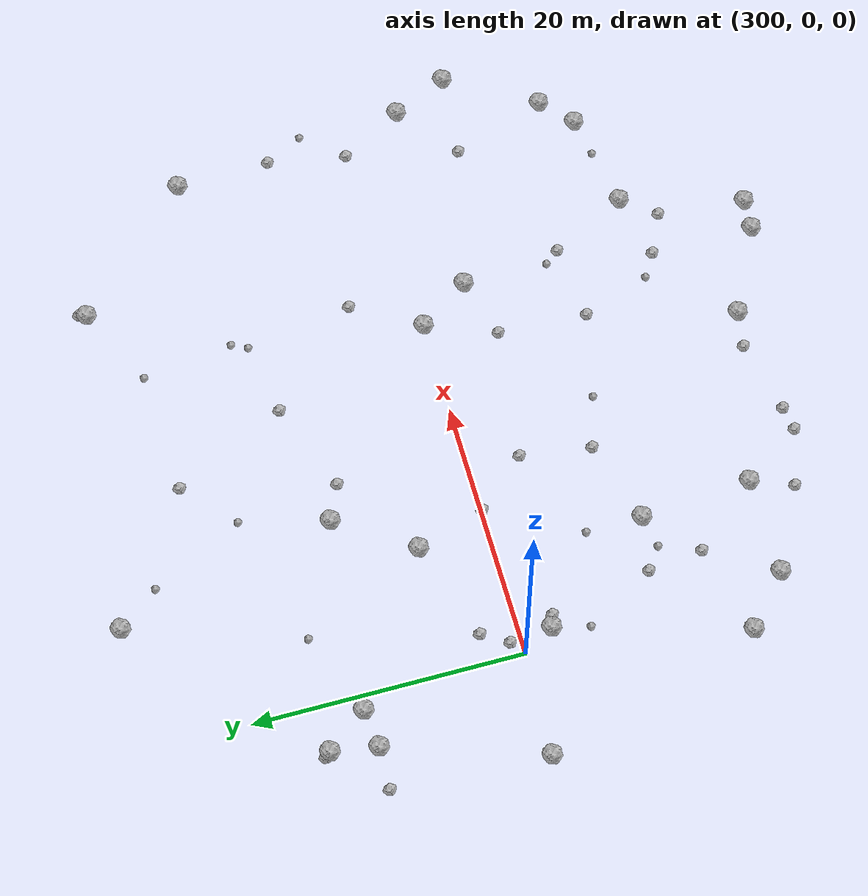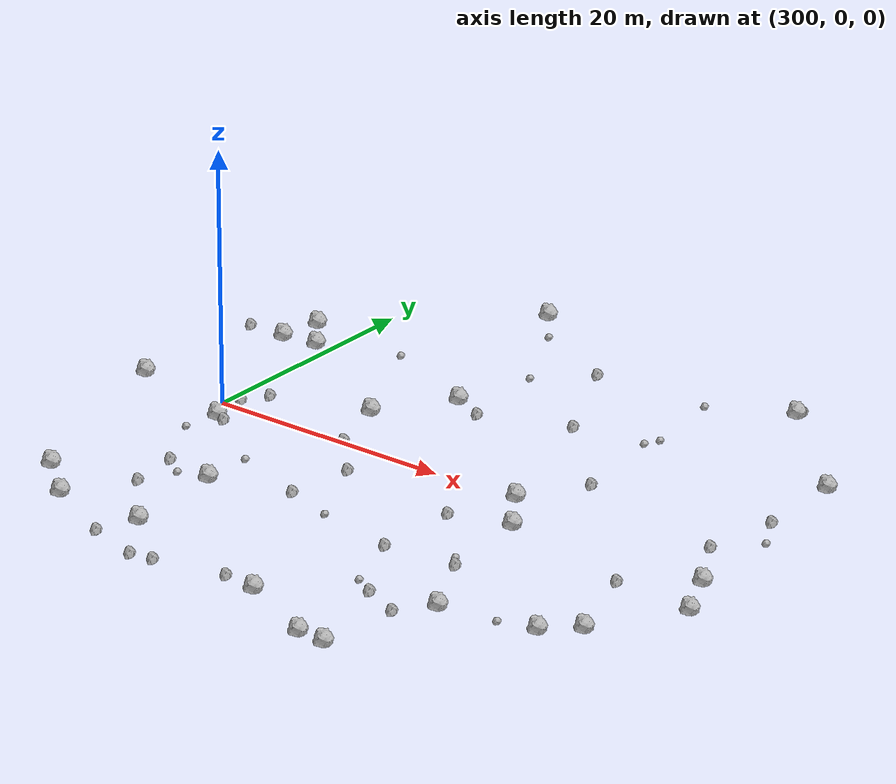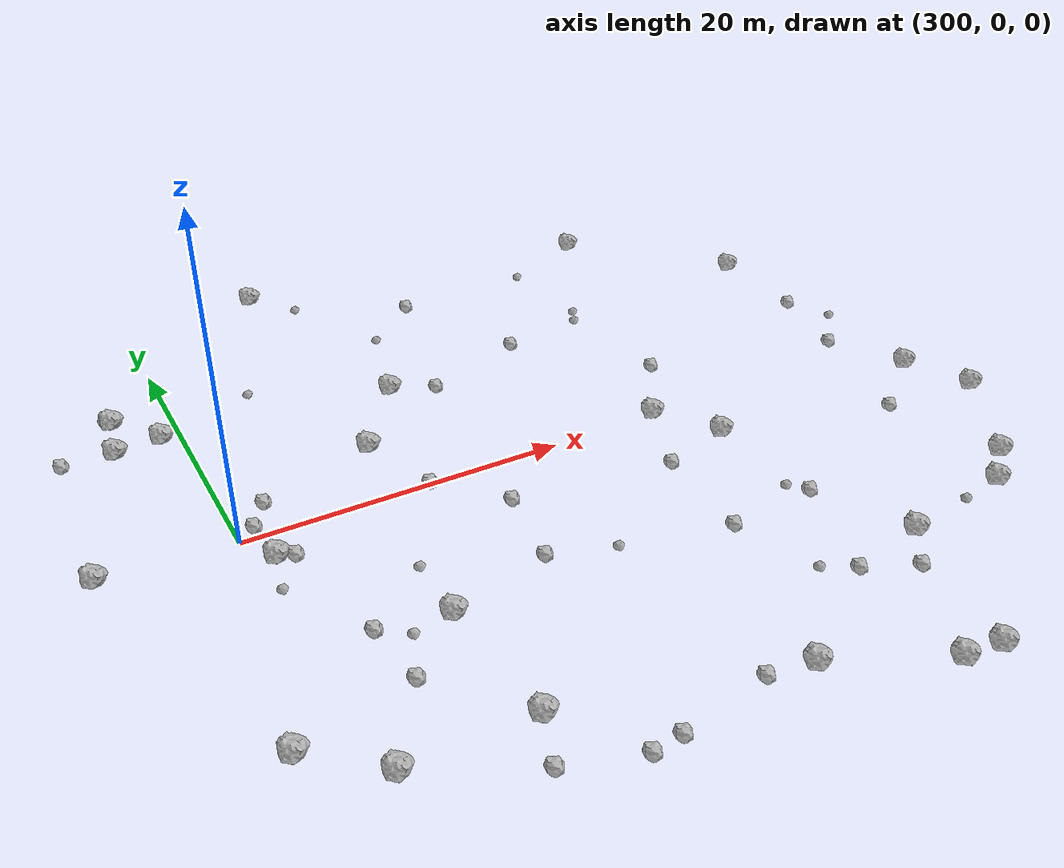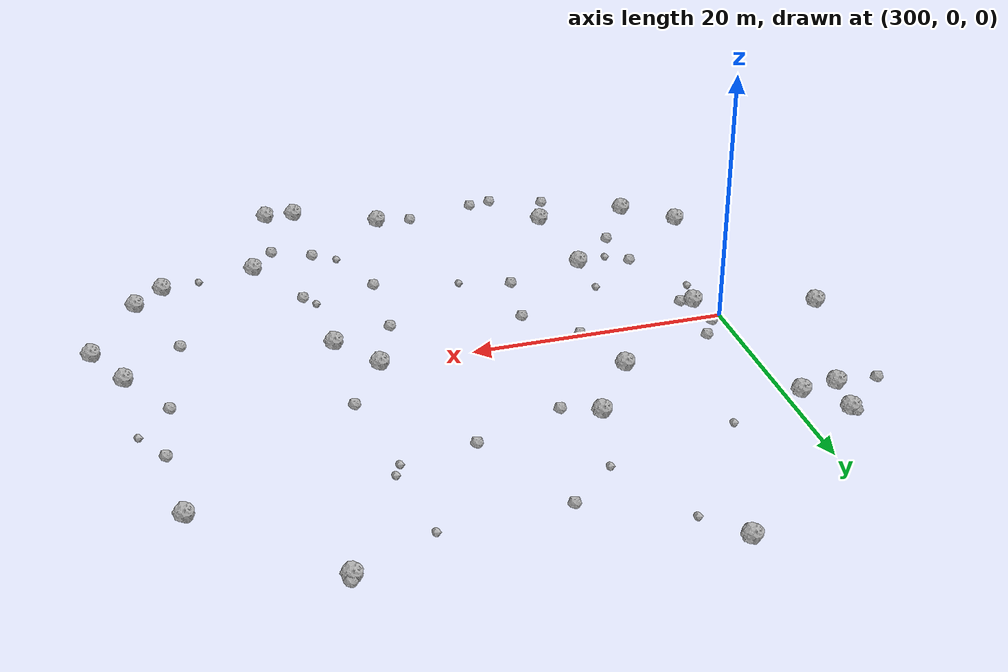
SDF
<sdf version="1.6">
 <world name="default">
  <include><uri>model://sun</uri></include>
  <model name="rock1_8_3">
   <include><uri>model://rock1</uri><pose>343.6923131098011 14.949614484842627 0.5 0 0 0</pose></include>
  </model>
  <model name="rock1_8_4">
   <include><uri>model://rock1</uri><pose>327.17525195757065 0.055480049445503 0.5 0 0 0</pose></include>
  </model>
  <model name="rock1_8_5">
   <include><uri>model://rock1</uri><pose>296.5512067994782 15.240228807067574 0.5 0 0 0</pose></include>
  </model>
  <model name="rock1_8_6">
   <include><uri>model://rock1</uri><pose>331.0062061848349 -26.219389387600707 0.5 0 0 0</pose></include>
  </model>
  <model name="rock1_8_7">
   <include><uri>model://rock1</uri><pose>322.0203522596004 -22.827635153909405 0.5 0 0 0</pose></include>
  </model>
  <model name="rock1_8_8">
   <include><uri>model://rock1</uri><pose>301.40906765471595 -2.2882431407015993 0.5 0 0 0</pose></include>
  </model>
  <model name="rock1_8_9">
   <include><uri>model://rock1</uri><pose>298.92114374727726 12.179663602282233 0.5 0 0 0</pose></include>
  </model>
  <model name="rock1_8_10">
   <include><uri>model://rock1</uri><pose>292.20139489711727 0.3832509775902011 0.5 0 0 0</pose></include>
  </model>
  <model name="rock1_8_11">
   <include><uri>model://rock1</uri><pose>308.5773939476127 -19.347264323672988 0.5 0 0 0</pose></include>
  </model>
  <model name="rock1_8_12">
   <include><uri>model://rock1</uri><pose>343.53082465071765 -13.645792737524115 0.5 0 0 0</pose></include>
  </model>
  <model name="rock1_8_13">
   <include><uri>model://rock1</uri><pose>329.80766902910466 -3.776418274960598 0.5 0 0 0</pose></include>
  </model>
  <model name="rock1_8_14">
   <include><uri>model://rock1</uri><pose>328.6226924860777 -26.023897815638065 0.5 0 0 0</pose></include>
  </model>
  <model name="rock1_8_15">
   <include><uri>model://rock1</uri><pose>334.6412782274491 24.076112608386545 0.5 0 0 0</pose></include>
  </model>
  <model name="rock1_8_16">
   <include><uri>model://rock1</uri><pose>301.1890809243713 -19.316624557262188 0.5 0 0 0</pose></include>
  </model>
  <model name="rock1_8_17">
   <include><uri>model://rock1</uri><pose>333.63043929897435 -17.10318465999128 0.5 0 0 0</pose></include>
  </model>
  <model name="rock1_8_18">
   <include><uri>model://rock1</uri><pose>313.6131747597455 10.77452935063269 0.5 0 0 0</pose></include>
  </model>
  <model name="rock1_8_19">
   <include><uri>model://rock1</uri><pose>341.16288167667125 -15.773584063873686 0.5 0 0 0</pose></include>
  </model>
  <model name="rock1_8_20">
   <include><uri>model://rock1</uri><pose>307.9146119032458 -10.988075168442112 0.5 0 0 0</pose></include>
  </model>
  <model name="rock1_8_21">
   <include><uri>model://rock1</uri><pose>347.5558994292678 -7.016862467061596 0.5 0 0 0</pose></include>
  </model>
  <model name="rock1_8_22">
   <include><uri>model://rock1</uri><pose>309.8232188736754 5.1972019324483725 0.5 0 0 0</pose></include>
  </model>
  <model name="rock1_8_23">
   <include><uri>model://rock1</uri><pose>345.6030493788867 -2.8183037842791947 0.5 0 0 0</pose></include>
  </model>
  <model name="rock1_8_24">
   <include><uri>model://rock1</uri><pose>297.46089127872614 -16.090189041472144 0.5 0 0 0</pose></include>
  </model>
  <model name="rock1_8_25">
   <include><uri>model://rock1</uri><pose>295.9927059001532 11.84053835990133 0.5 0 0 0</pose></include>
  </model>
  <model name="rock1_8_26">
   <include><uri>model://rock1</uri><pose>309.3993526238502 27.236076611404464 0.5 0 0 0</pose></include>
  </model>
  <model name="rock2_8_0">
   <include><uri>model://rock2</uri><pose>311.68655221978247 -23.847005064848325 0.3 0 0 0</pose></include>
  </model>
  <model name="rock2_8_1">
   <include><uri>model://rock2</uri><pose>343.909505236326 7.836015624909031 0.3 0 0 0</pose></include>
  </model>
  <model name="rock2_8_2">
   <include><uri>model://rock2</uri><pose>304.23441506459875 -14.38543975804051 0.3 0 0 0</pose></include>
  </model>
  <model name="rock2_8_3">
   <include><uri>model://rock2</uri><pose>340.97390885067705 -6.502331326676053 0.3 0 0 0</pose></include>
  </model>
  <model name="rock2_8_4">
   <include><uri>model://rock2</uri><pose>331.66011377453907 -19.623018282754707 0.3 0 0 0</pose></include>
  </model>
  <model name="rock2_8_5">
   <include><uri>model://rock2</uri><pose>324.8333720790742 -11.906473655393661 0.3 0 0 0</pose></include>
  </model>
  <model name="rock2_8_6">
   <include><uri>model://rock2</uri><pose>334.81004180205343 24.611400448242776 0.3 0 0 0</pose></include>
  </model>
  <model name="rock2_8_7">
   <include><uri>model://rock2</uri><pose>318.9962525794307 20.666278307426026 0.3 0 0 0</pose></include>
  </model>
  <model name="rock2_8_8">
   <include><uri>model://rock2</uri><pose>316.2929610349783 9.562710263408135 0.3 0 0 0</pose></include>
  </model>
  <model name="rock2_8_9">
   <include><uri>model://rock2</uri><pose>302.25744104836224 2.7626213373572597 0.3 0 0 0</pose></include>
  </model>
  <model name="rock2_8_10">
   <include><uri>model://rock2</uri><pose>319.18157980087375 -22.37625442458151 0.3 0 0 0</pose></include>
  </model>
  <model name="rock2_8_11">
   <include><uri>model://rock2</uri><pose>314.9566156935701 -3.8276203128880724 0.3 0 0 0</pose></include>
  </model>
  <model name="rock2_8_12">
   <include><uri>model://rock2</uri><pose>328.53835103805 -18.193590342433406 0.3 0 0 0</pose></include>
  </model>
  <model name="rock2_8_13">
   <include><uri>model://rock2</uri><pose>302.31163783363553 -2.6124798725338074 0.3 0 0 0</pose></include>
  </model>
  <model name="rock2_8_14">
   <include><uri>model://rock2</uri><pose>301.07025307648286 0.8563719428947429 0.3 0 0 0</pose></include>
  </model>
  <model name="rock2_8_15">
   <include><uri>model://rock2</uri><pose>313.5362331800957 -23.5704161003973 0.3 0 0 0</pose></include>
  </model>
  <model name="rock2_8_16">
   <include><uri>model://rock2</uri><pose>330.1679939675895 5.020830000771689 0.3 0 0 0</pose></include>
  </model>
  <model name="rock2_8_17">
   <include><uri>model://rock2</uri><pose>292.7533911326089 11.935055669056716 0.3 0 0 0</pose></include>
  </model>
  <model name="rock2_8_18">
   <include><uri>model://rock2</uri><pose>330.64159625600394 -11.34594310673246 0.3 0 0 0</pose></include>
  </model>
  <model name="rock2_8_19">
   <include><uri>model://rock2</uri><pose>303.7348203259719 -10.252563208531754 0.3 0 0 0</pose></include>
  </model>
  <model name="rock2_8_20">
   <include><uri>model://rock2</uri><pose>296.2047157643181 15.627635357566646 0.3 0 0 0</pose></include>
  </model>
  <model name="rock2_8_21">
   <include><uri>model://rock2</uri><pose>323.17279647414534 12.141975810433244 0.3 0 0 0</pose></include>
  </model>
  <model name="rock2_8_22">
   <include><uri>model://rock2</uri><pose>342.86617766368505 1.9210351266462382 0.3 0 0 0</pose></include>
  </model>
  <model name="rock2_8_23">
   <include><uri>model://rock2</uri><pose>325.1134482433482 -5.14688251156603 0.3 0 0 0</pose></include>
  </model>
  <model name="rock2_8_24">
   <include><uri>model://rock2</uri><pose>314.204859180877 -9.14738018248125 0.3 0 0 0</pose></include>
  </model>
  <model name="rock2_8_25">
   <include><uri>model://rock2</uri><pose>307.36760810714463 -22.463560182683537 0.3 0 0 0</pose></include>
  </model>
  <model name="rock2_8_26">
   <include><uri>model://rock2</uri><pose>311.5065180950976 -0.03100031444093787 0.3 0 0 0</pose></include>
  </model>
  <model name="rock3_8_0">
   <include><uri>model://rock3</uri><pose>345.4188447940676 4.917931404070266 0.2 0 0 0</pose></include>
  </model>
  <model name="rock3_8_1">
   <include><uri>model://rock3</uri><pose>329.76173207983874 -10.288193170960866 0.2 0 0 0</pose></include>
  </model>
  <model name="rock3_8_2">
   <include><uri>model://rock3</uri><pose>328.8296712474577 13.079043870363655 0.2 0 0 0</pose></include>
  </model>
  <model name="rock3_8_3">
   <include><uri>model://rock3</uri><pose>329.3965655425772 14.25184400212246 0.2 0 0 0</pose></include>
  </model>
  <model name="rock3_8_4">
   <include><uri>model://rock3</uri><pose>338.1019774041278 -16.362257212271807 0.2 0 0 0</pose></include>
  </model>
  <model name="rock3_8_5">
   <include><uri>model://rock3</uri><pose>326.70068445167567 -17.13672551841914 0.2 0 0 0</pose></include>
  </model>
  <model name="rock3_8_6">
   <include><uri>model://rock3</uri><pose>305.11685711109817 14.554983658641959 0.2 0 0 0</pose></include>
  </model>
  <model name="rock3_8_7">
   <include><uri>model://rock3</uri><pose>315.2524112996327 17.204260161479553 0.2 0 0 0</pose></include>
  </model>
  <model name="rock3_8_8">
   <include><uri>model://rock3</uri><pose>311.7478535623353 24.138620356890485 0.2 0 0 0</pose></include>
  </model>
  <model name="rock3_8_9">
   <include><uri>model://rock3</uri><pose>307.81306897468943 -6.811644960095119 0.2 0 0 0</pose></include>
  </model>
  <model name="rock3_8_10">
   <include><uri>model://rock3</uri><pose>318.15314537413286 -10.436754499743046 0.2 0 0 0</pose></include>
  </model>
  <model name="rock3_8_11">
   <include><uri>model://rock3</uri><pose>305.38459758397374 -11.486285095758088 0.2 0 0 0</pose></include>
  </model>
  <model name="rock3_8_12">
   <include><uri>model://rock3</uri><pose>328.42770660210294 21.091373075365468 0.2 0 0 0</pose></include>
  </model>
  <model name="rock3_8_13">
   <include><uri>model://rock3</uri><pose>300.71922226957577 -5.057891520429884 0.2 0 0 0</pose></include>
  </model>
 </world>
</sdf>
